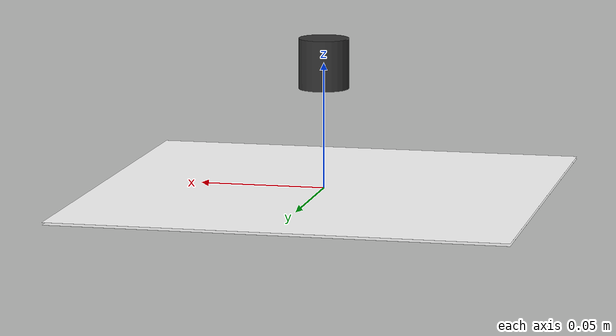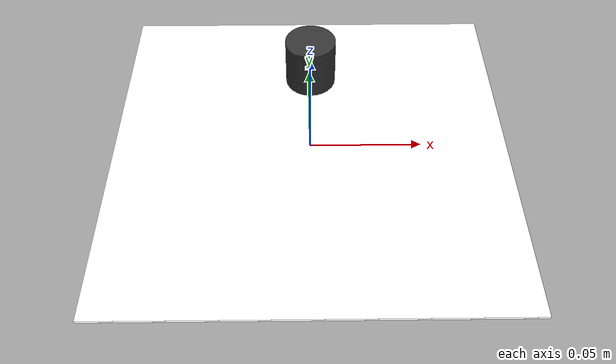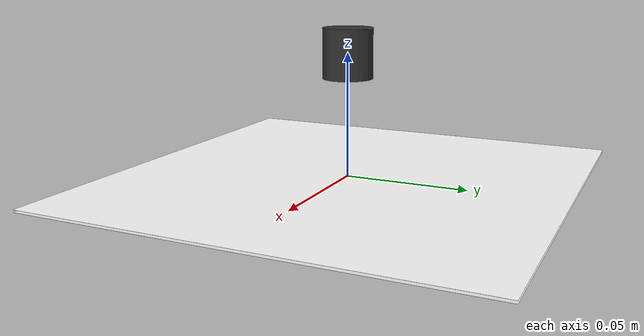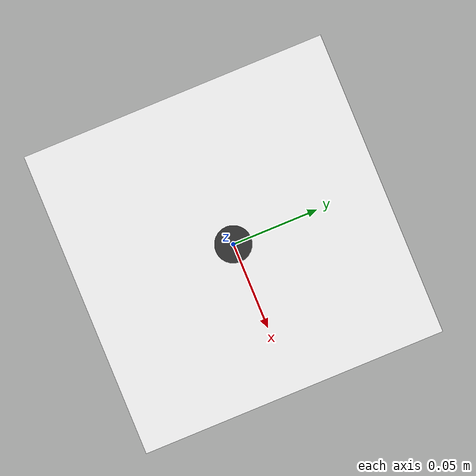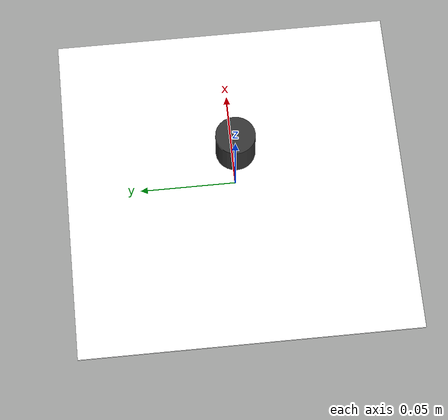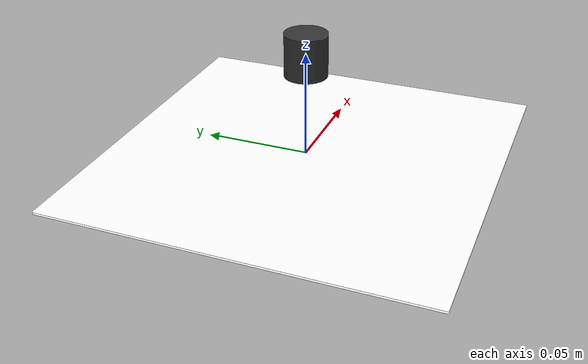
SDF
marker_0<?xml version='1.0'?>
<sdf version='1.5'>
  <model name='marker_0'>

    <link name='marker'>
      <pose frame=''>0 0 0 0 0 0</pose>
      <visual name='visual'>
        <geometry>
          <box>
            <size>0.1778 0.1778 1e-5</size>
          </box>
        </geometry>
        <material>
          <script>
            <uri>model://marker_0/materials/scripts</uri>
            <uri>model://marker_0/materials/textures</uri>
            <name>ArucoVisualMarker0/Marker</name>
          </script>
          <ambient>1 1 1 1</ambient>
          <diffuse>1 1 1 1</diffuse>
          <specular>0 0 0 1</specular>
          <emissive>1 1 1 0</emissive>
          <shader type='vertex'>
            <normal_map>__default__</normal_map>
          </shader>
        </material>
        <pose frame=''>0 0 0 0 0 0</pose>
        <cast_shadows>1</cast_shadows>
        <transparency>0</transparency>
      </visual>
      <collision name='collision'>
        <laser_retro>0</laser_retro>
        <max_contacts>10</max_contacts>
        <pose frame=''>0 0 0 0 0 0</pose>
        <geometry>
          <box>
            <size>0.1778 0.1778 1e-05</size>
          </box>
        </geometry>
      </collision>
    </link>

    <link name='marker_pad'>
      <pose frame='marker'>0 0 -1e-3 0 0 0</pose>
      <visual name='visual'>
        <geometry>
          <box>
            <size>0.1778 0.1778 1e-5</size>
          </box>
        </geometry>
        <material>
          <lighting>1</lighting>
          <script>
            <uri>file://media/materials/scripts/gazebo.material</uri>
            <name>Gazebo/White</name>
          </script>
          <ambient>0.3 0.3 0.3 1</ambient>
          <diffuse>0.7 0.7 0.7 1</diffuse>
          <specular>0.01 0.01 0.01 1</specular>
          <emissive>1 1 1 0</emissive>
          <shader type='vertex'>
            <normal_map>__default__</normal_map>
          </shader>
        </material>
        <cast_shadows>1</cast_shadows>
        <transparency>0</transparency>
      </visual>
      <collision name='collision'>
        <laser_retro>0</laser_retro>
        <max_contacts>10</max_contacts>
        <pose frame=''>0 0 0 0 0 0</pose>
        <geometry>
          <box>
            <size>0.1778 0.1778 1e-5</size>
          </box>
        </geometry>
      </collision>
    </link>

    <joint name='marker_JOINT_marker_pad' type='revolute'>
      <parent>marker</parent>
      <child>marker_pad</child>
      <pose frame=''>0 0 0 0 0 0</pose>
      <axis>
        <xyz>0 0 1</xyz>
        <limit>
          <upper>0</upper>
          <lower>0</lower>
        </limit>
      </axis>
    </joint>

    <!-- IMU Sensor Link -->
    <link name='imu_link'>
      <pose>0 0 0.05 0 0 0</pose>
      <inertial>
        <mass>0.01</mass>
        <inertia>
          <ixx>0.00001</ixx>
          <ixy>0.0</ixy>
          <ixz>0.0</ixz>
          <iyy>0.00001</iyy>
          <iyz>0.0</iyz>
          <izz>0.00001</izz>
        </inertia>
      </inertial>
      <visual name='visual'>
        <geometry>
          <cylinder>
            <radius>0.01</radius>
            <length>0.02</length>
          </cylinder>
        </geometry>
        <material>
          <ambient>0.1 0.1 0.1 1</ambient>
          <diffuse>0.2 0.2 0.2 1</diffuse>
          <specular>0.1 0.1 0.1 1</specular>
          <emissive>0 0 0 0</emissive>
        </material>
      </visual>
      <collision name='collision'>
        <geometry>
          <cylinder>
            <radius>0.01</radius>
            <length>0.02</length>
          </cylinder>
        </geometry>
      </collision>
    </link>

    <!-- IMU Sensor Plugin -->
    <gazebo>
      <plugin name="imu_plugin" filename="libgazebo_ros_imu.so">
        <alwaysOn>true</alwaysOn>
        <updateRate>50</updateRate>
        <bodyName>imu_link</bodyName>
        <topicName>/marker_0/imu</topicName>
        <gaussianNoise>0.0</gaussianNoise>
        <serviceName>/marker_0/imu_service</serviceName>
      </plugin>
    </gazebo>

    <static>1</static>
    <allow_auto_disable>1</allow_auto_disable>

  </model>
</sdf>
